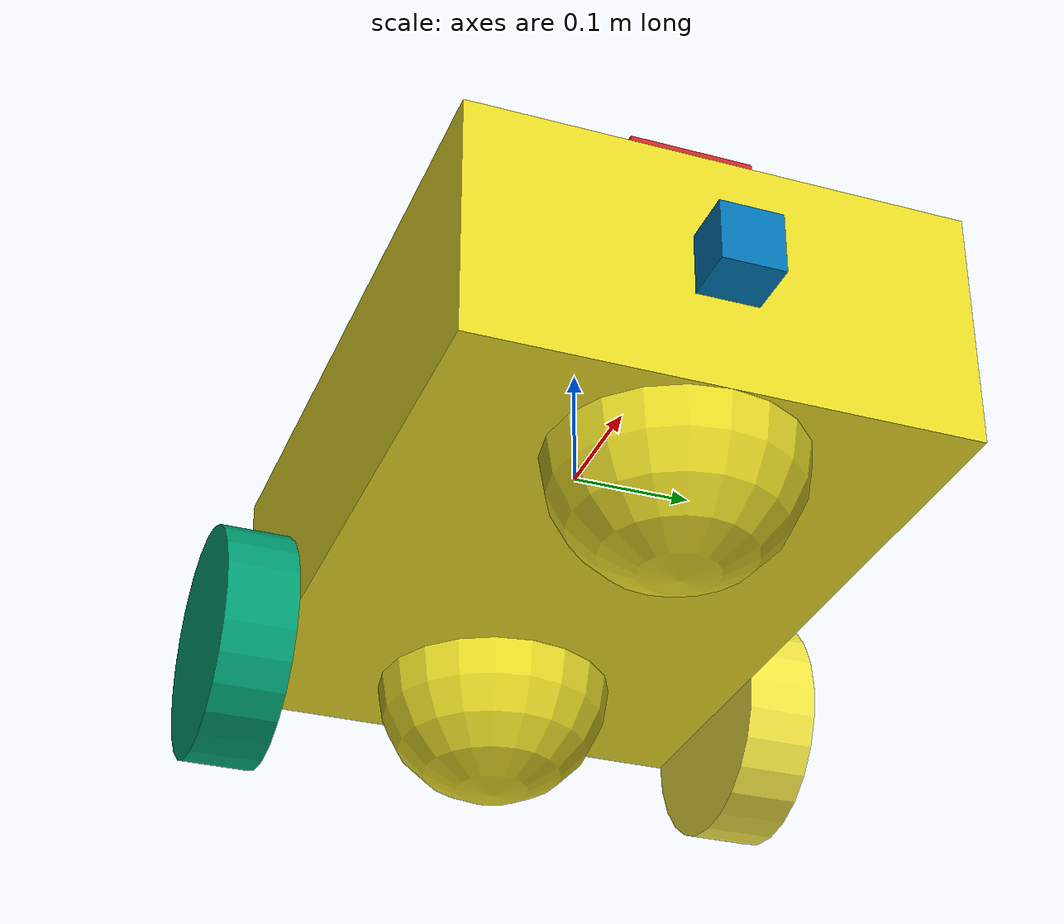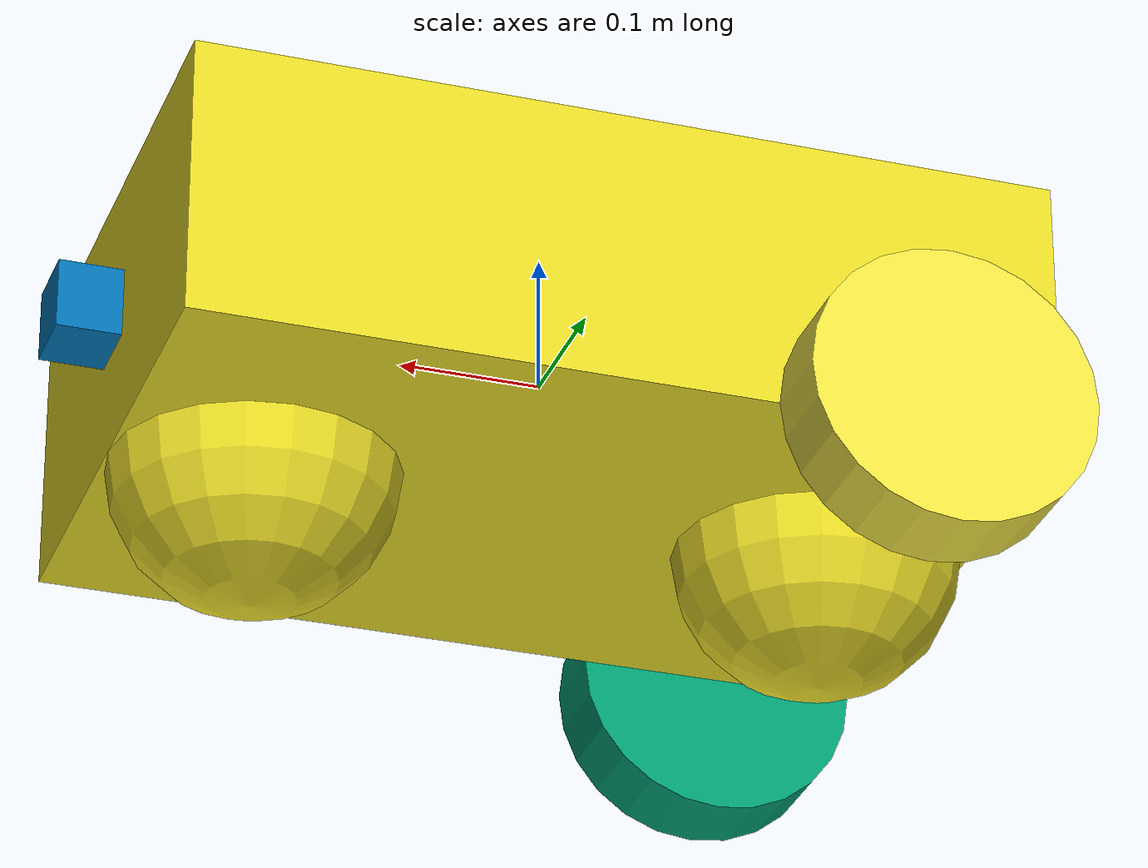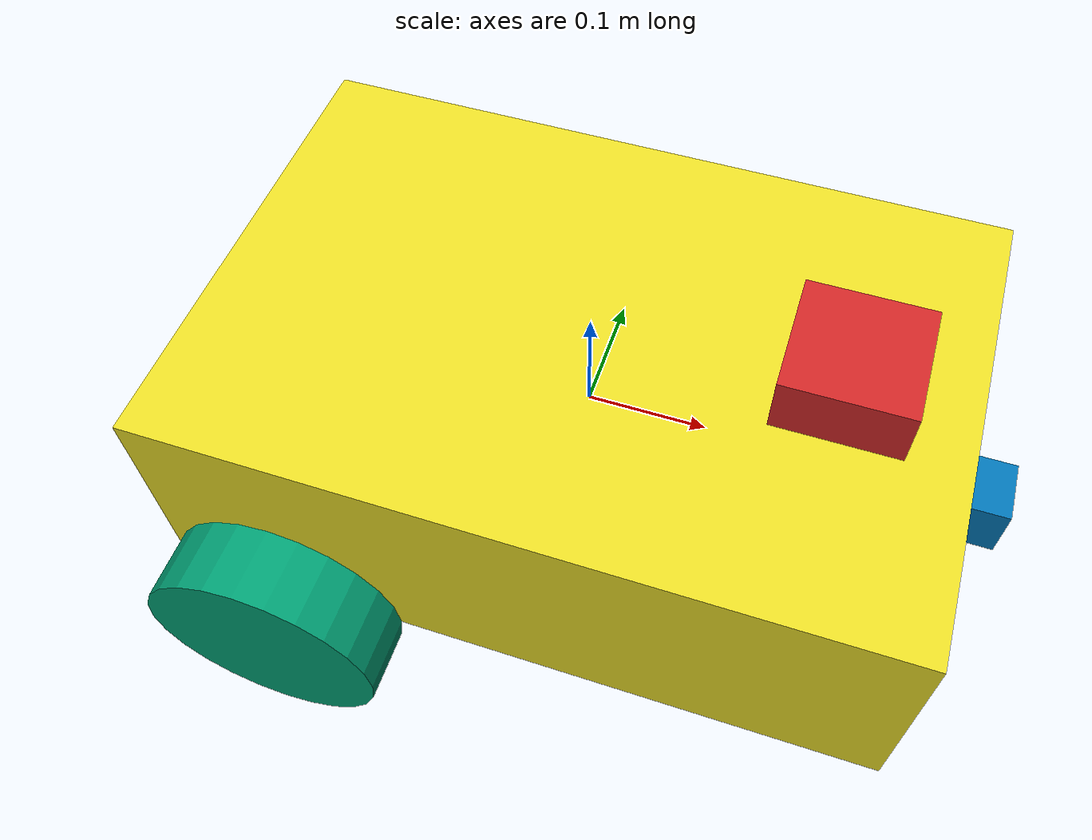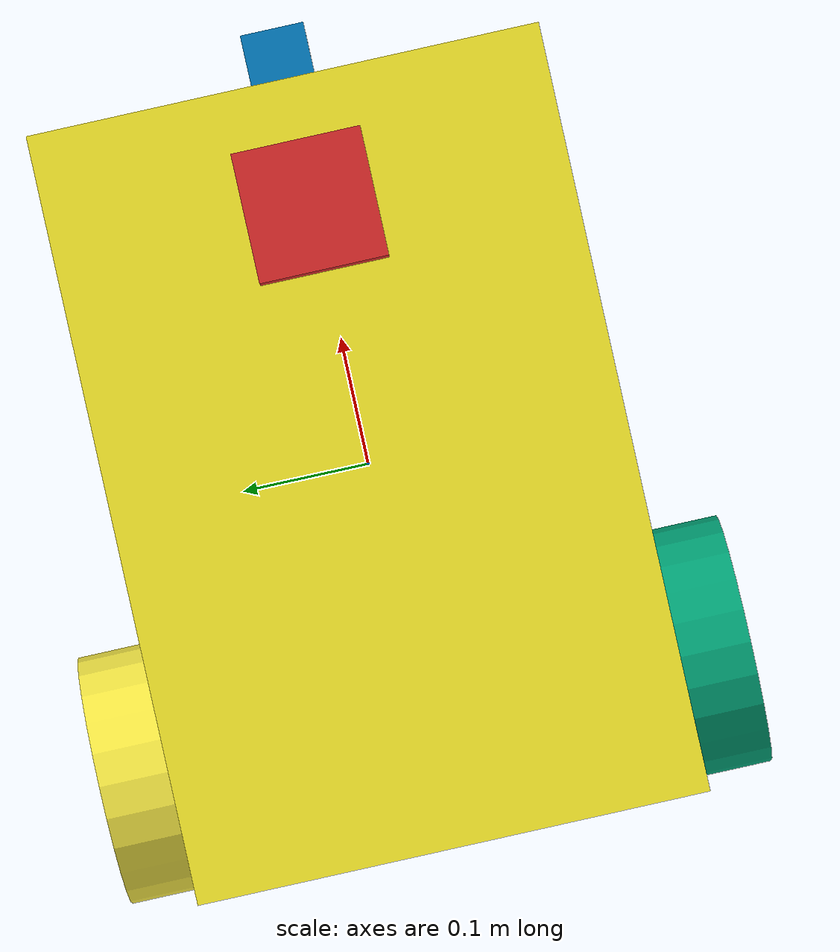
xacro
<?xml version='1.0'?>

<robot name="my_robot" xmlns:xacro="http://www.ros.org/wiki/xacro">

  <link name="robot_footprint"></link>

  <xacro:include filename="$(find my_robot)/urdf/my_robot.gazebo" />

  <joint name="robot_footprint_joint" type="fixed">
    <origin xyz="0 0 0" rpy="0 0 0" />
    <parent link="robot_footprint"/>
    <child link="chassis" />
  </joint>

  <link name='chassis'>
    <pose>0 0 0.1 0 0 0</pose>

    <inertial>
      <mass value="20.0"/>
      <origin xyz="0.0 0 0" rpy=" 0 0 0"/>
      <inertia
          ixx="0.1" ixy="0" ixz="0"
          iyy="0.1" iyz="0"
          izz="0.1"
      />
    </inertial>

    <collision name='collision'>
      <origin xyz="0 0 0" rpy=" 0 0 0"/>
      <geometry>
        <box size=".6 .4 .2"/>
      </geometry>
    </collision>

    <visual name='chassis_visual'>
      <origin xyz="0 0 0" rpy=" 0 0 0"/>
      <geometry>
        <box size=".6 .4 .2"/>
      </geometry>
    </visual>

    <collision name='back_caster_collision'>
      <origin xyz="-0.2 0 -0.1" rpy=" 0 0 0"/>
      <geometry>
        <sphere radius="0.1"/>
      </geometry>
    </collision>

    <visual name='back_caster_visual'>
      <origin xyz="-0.2 0 -0.1" rpy=" 0 0 0"/>
      <geometry>
        <sphere radius="0.1"/>
      </geometry>
    </visual>

    <collision name='front_caster_collision'>
      <origin xyz="0.2 0 -0.1" rpy=" 0 0 0"/>
      <geometry>
        <sphere radius="0.1"/>
      </geometry>
    </collision>

    <visual name='front_caster_visual'>
      <origin xyz="0.2 0 -0.1" rpy=" 0 0 0"/>
      <geometry>
        <sphere radius="0.1"/>
      </geometry>
    </visual>

  </link>

  <link name='left_wheel'>
    <pose>0 0 0 0 0 0</pose>

    <inertial>
      <mass value="4.0"/>
      <origin xyz="0.0 0 0" rpy=" 0 1.5707 1.5707"/>
      <inertia
          ixx="0.1" ixy="0" ixz="0"
          iyy="0.1" iyz="0"
          izz="0.1"
      />
    </inertial>

    <collision name='collision'>
      <origin xyz="0 0 0" rpy=" 0 1.5707 1.5707"/>
      <geometry>
        <cylinder radius="0.1" length="0.06"/>
      </geometry>
    </collision>

    <visual name='left_wheel_visual'>
      <origin xyz="0 0 0" rpy=" 0 1.5707 1.5707"/>
      <geometry>
        <cylinder radius="0.1" length="0.06"/>
      </geometry>
    </visual>

  </link>

  <link name='right_wheel'>
    <pose>0 0 0 0 0 0</pose>

    <inertial>
      <mass value="4.0"/>
      <origin xyz="0.0 0 0" rpy=" 0 1.5707 1.5707"/>
      <inertia
          ixx="0.1" ixy="0" ixz="0"
          iyy="0.1" iyz="0"
          izz="0.1"
      />
    </inertial>

    <collision name='right_wheel_collision'>
      <origin xyz="0 0 0" rpy=" 0 1.5707 1.5707"/>
      <geometry>
        <cylinder radius="0.1" length="0.06"/>
      </geometry>
    </collision>

    <visual name='right_wheel_visual'>
      <origin xyz="0 0 0" rpy="0 1.5707 1.5707"/>
      <geometry>
        <cylinder radius="0.1" length="0.06"/>
      </geometry>
    </visual>

  </link>

  <joint type="continuous" name="left_wheel_hinge">
    <origin xyz="-0.2 -.23 -0.1" rpy="0 0 0"/>
    <child link="left_wheel"/>
    <parent link="chassis"/>
    <axis xyz="0 1 0" rpy="0 0 0"/>
    <limit effort="10000" velocity="1000"/>
    <dynamics damping="1.0" friction="1.0"/>
  </joint>

  <joint type="continuous" name="right_wheel_hinge">
    <origin xyz="-0.2 .23 -0.1" rpy="0 0 0"/>
    <child link="right_wheel"/>
    <parent link="chassis"/>
    <axis xyz="0 1 0" rpy="0 0 0"/>
    <limit effort="10000" velocity="1000"/>
    <dynamics damping="1.0" friction="1.0"/>
  </joint>

  <link name='camera'>
    <pose>0 0 0 0 0 0</pose>

    <inertial>
      <mass value="0.1"/>
      <origin xyz="0.0 0 0" rpy=" 0 0 0"/>
      <inertia
          ixx="1e-6" ixy="0" ixz="0"
          iyy="1e-6" iyz="0"
          izz="1e-6"
      />
    </inertial>

    <collision name='collision'>
      <origin xyz="0 0 0" rpy=" 0 0 0"/>
      <geometry>
        <box size="0.05 0.05 0.05"/>
      </geometry>
    </collision>

    <visual name='camera_visual'>
      <origin xyz="0 0 0" rpy=" 0 0 0"/>
      <geometry>
        <box size="0.05 0.05 0.05"/>
      </geometry>
    </visual>

  </link>

  <joint type="fixed" name="camera_joint">
    <origin xyz="0.32 0 0" rpy="0 0 0"/>
    <child link="camera"/>
    <parent link="chassis"/>
    <axis xyz="0 1 0" rpy="0 0 0"/>
    <limit effort="10000" velocity="1000"/>
    <dynamics damping="1.0" friction="1.0"/>
  </joint>

  <link name='hokuyo'>
    <pose>0 0 0 0 0 0</pose>

    <inertial>
      <mass value="1e-5"/>
      <origin xyz="0.0 0 0" rpy=" 0 0 0"/>
      <inertia
          ixx="1e-6" ixy="0" ixz="0"
          iyy="1e-6" iyz="0"
          izz="1e-6"
      />
    </inertial>

    <collision name='collision'>
      <origin xyz="0 0 0" rpy=" 0 0 0"/>
      <geometry>
        <box size="0.1 0.1 0.1"/>
      </geometry>
    </collision>

    <visual name= "package://my_robot/meshes/hokuyo.dae">
      <origin xyz="0 0 0" rpy=" 0 0 0"/>
      <geometry>
        <box size="0.1 0.1 0.1"/>
      </geometry>

    </visual>

  </link>

  <joint type="fixed" name="hokuyo_joint">
    <origin xyz="0.2 0 .1" rpy="0 0 0"/>
    <child link="hokuyo"/>
    <parent link="chassis"/>
    <axis xyz="0 1 0" rpy="0 0 0"/>
    <limit effort="10000" velocity="1000"/>
    <dynamics damping="1.0" friction="1.0"/>
  </joint>

  <gazebo reference="right_wheel_hinge">
      <material>Gazebo/Blue</material>
  </gazebo>

  <gazebo reference="left_wheel_hinge">
      <material>Gazebo/Blue</material>
  </gazebo>

  <gazebo reference="chassis">
      <material>Gazebo/Yellow</material>
  </gazebo>

  <gazebo reference="hokuyo">
      <material>Gazebo/Red</material>
  </gazebo>

</robot>
